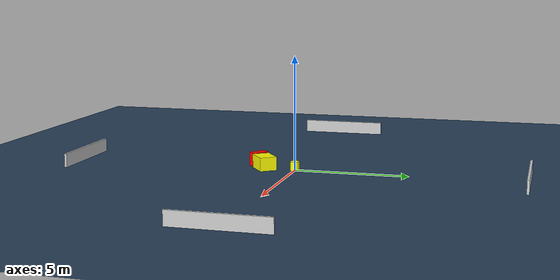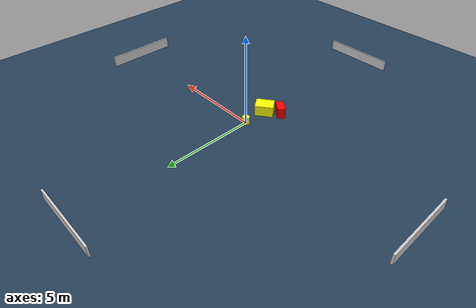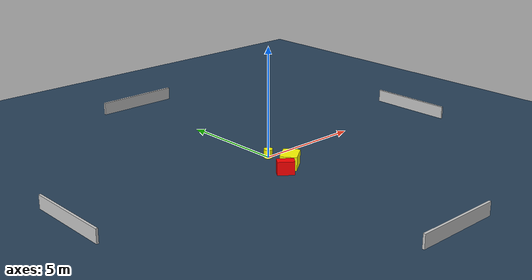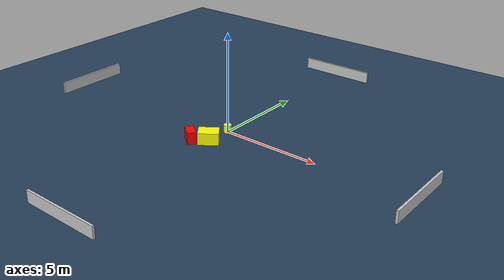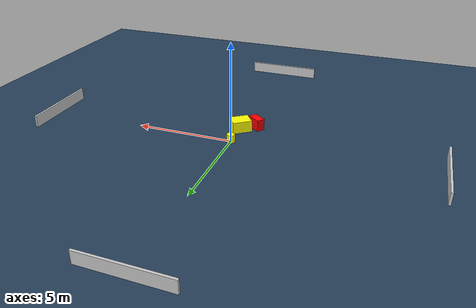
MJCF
<?xml version="1.0" ?>
<mujoco model="generated_environment">
  <option timestep="0.01" integrator="RK4" cone="elliptic"/>
  <default>
    <geom density="1"/>
  </default>
  <asset>
    <texture builtin="gradient" height="3072" name="skybox" rgb1="0.3 0.5 0.7" rgb2="0 0 0" type="skybox" width="512"/>
    <texture builtin="checker" height="300" name="groundplane" rgb1="0.2 0.3 0.4" rgb2="0.1 0.2 0.3" type="2d" width="300"/>
    <material name="groundplane" reflectance="0.2" texrepeat="5 5" texture="groundplane"/>
  </asset>
  <worldbody>
    <light dir="0 0 -1" directional="true" pos="0 0 1.5"/>
    <geom condim="3" friction="0.5 0.005 0.001" material="groundplane" name="floor" pos="0 0 0" size="0 0 0.05" type="plane"/>
    <body name="walls">
      <geom name="wall_1" condim="4" pos="-10.0 0.0 0.3" rgba="0.800000011920929 0.800000011920929 0.800000011920929 1.0" size="0.05 2.0 0.3" type="box"/>
      <geom name="wall_2" condim="4" pos="10.0 0.0 0.3" rgba="0.800000011920929 0.800000011920929 0.800000011920929 1.0" size="0.05 2.0 0.3" type="box"/>
      <geom name="wall_3" condim="4" pos="0.0 -10.0 0.3" rgba="0.800000011920929 0.800000011920929 0.800000011920929 1.0" size="2.0 0.05 0.3" type="box"/>
      <geom name="wall_4" condim="4" pos="0.0 10.0 0.3" rgba="0.800000011920929 0.800000011920929 0.800000011920929 1.0" size="2.0 0.05 0.3" type="box"/>
    </body>
    <body name="robot">
      <joint name="joint_x" type="slide" pos="0 0 0" axis="1 0 0"/>
      <joint name="joint_y" type="slide" pos="0 0 0" axis="0 1 0"/>
      <geom name="robot" type="cylinder" pos="0.0 0.0 0.2" size="0.2 0.2 0.0" mass="5.0" friction="1.0 0.005 0.0001" condim="4" rgba="1.0 1.0 0.0 1.0"/>
    </body>
    <body name="obstacle_1_movable">
      <geom name="obstacle_1_movable" condim="4" pos="-0.010410783768464119 -1.3839279301205087 0.3" euler="0 0 126.51491178915222" friction="0.0 0.005 0.001" rgba="1.0 1.0 0.0 1.0" size="0.37456647997754244 0.4993407670426366 0.3" type="box" mass="0.1"/>
      <joint type="free"/>
    </body>
    <body name="obstacle_2_static">
      <geom name="obstacle_2_static" condim="4" pos="-0.7302920299705176 -1.8582761578187899 0.3" euler="0 0 142.40614942323754" friction="0.0 0.005 0.001" rgba="1.0 0.0 0.0 1.0" size="0.379639751869537 0.21365861221040966 0.3" type="box"/>
    </body>
  </worldbody>
  <actuator>
    <motor name="actuator_x" joint="joint_x" gear="1" ctrlrange="-1 1"/>
    <motor name="actuator_y" joint="joint_y" gear="1" ctrlrange="-1 1"/>
  </actuator>
</mujoco>
